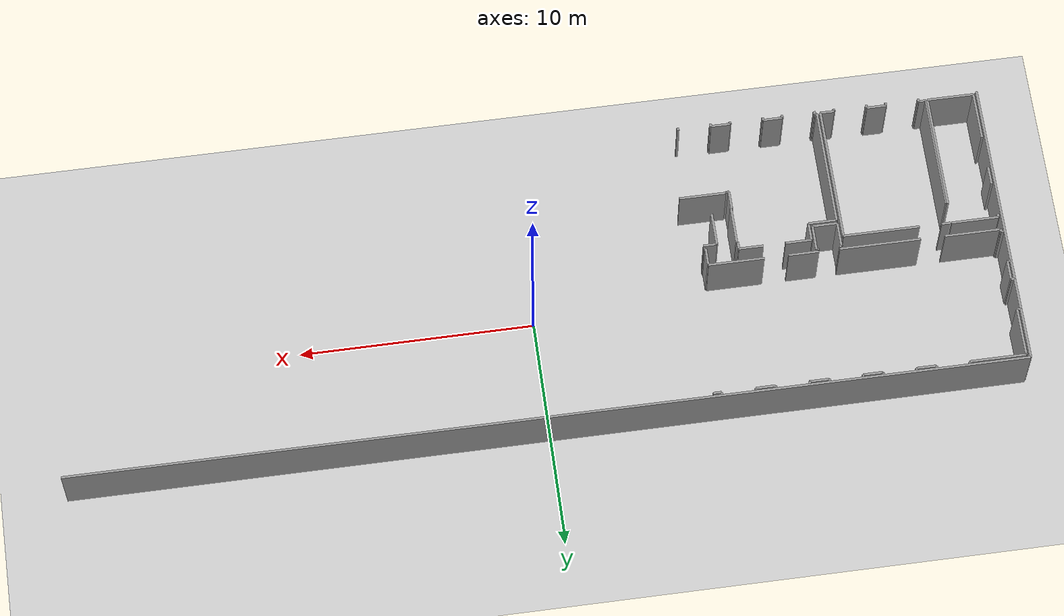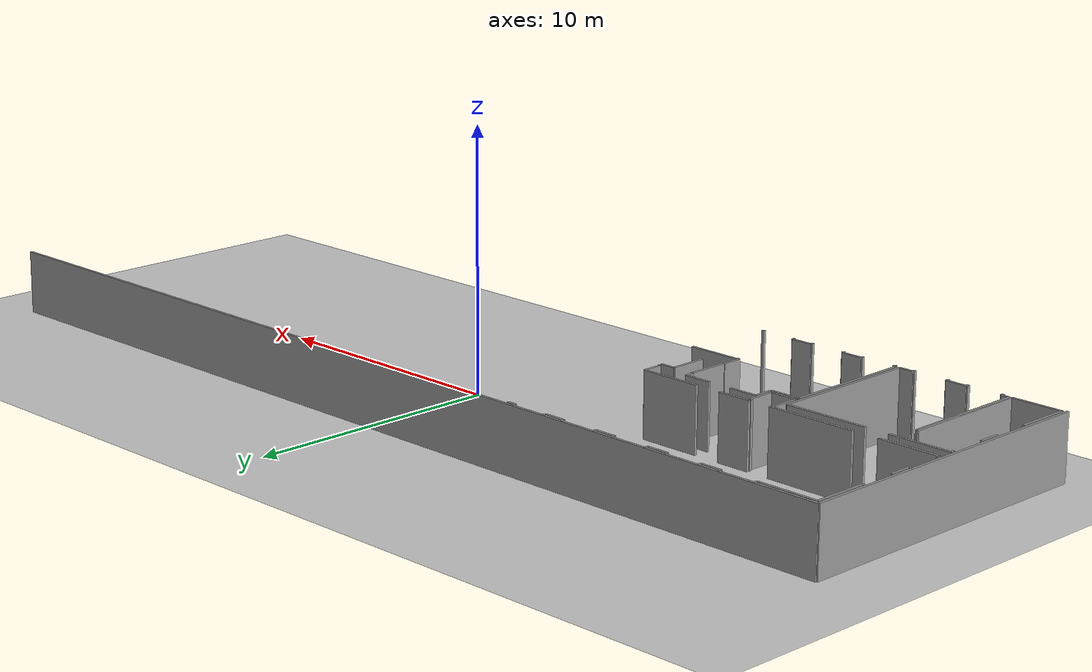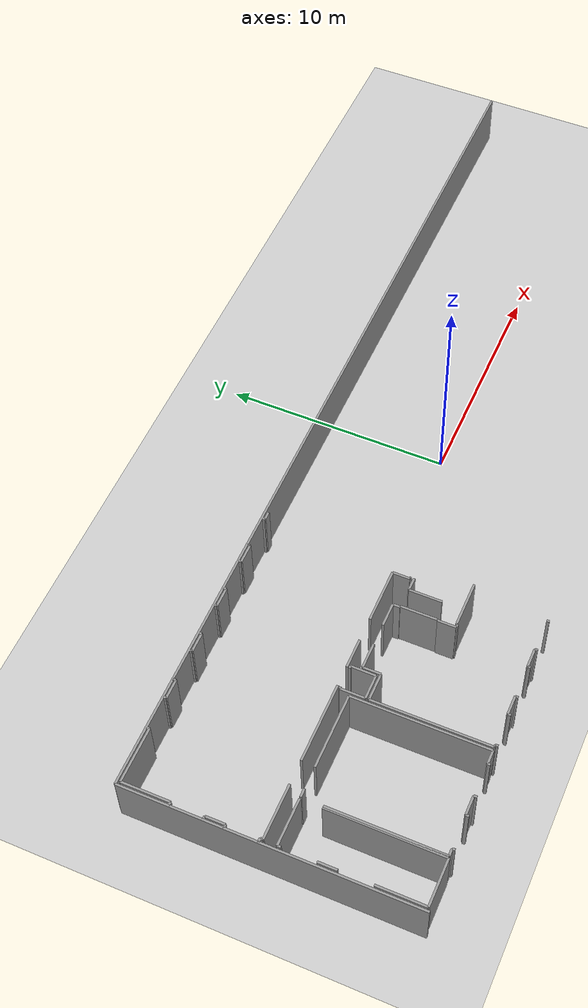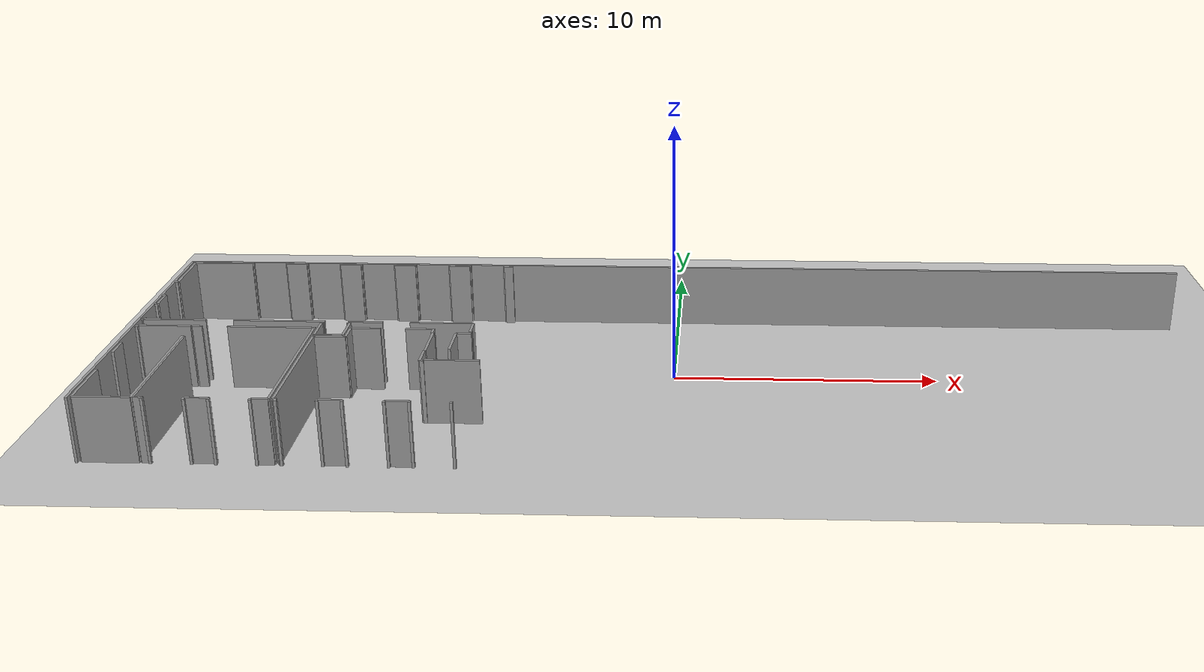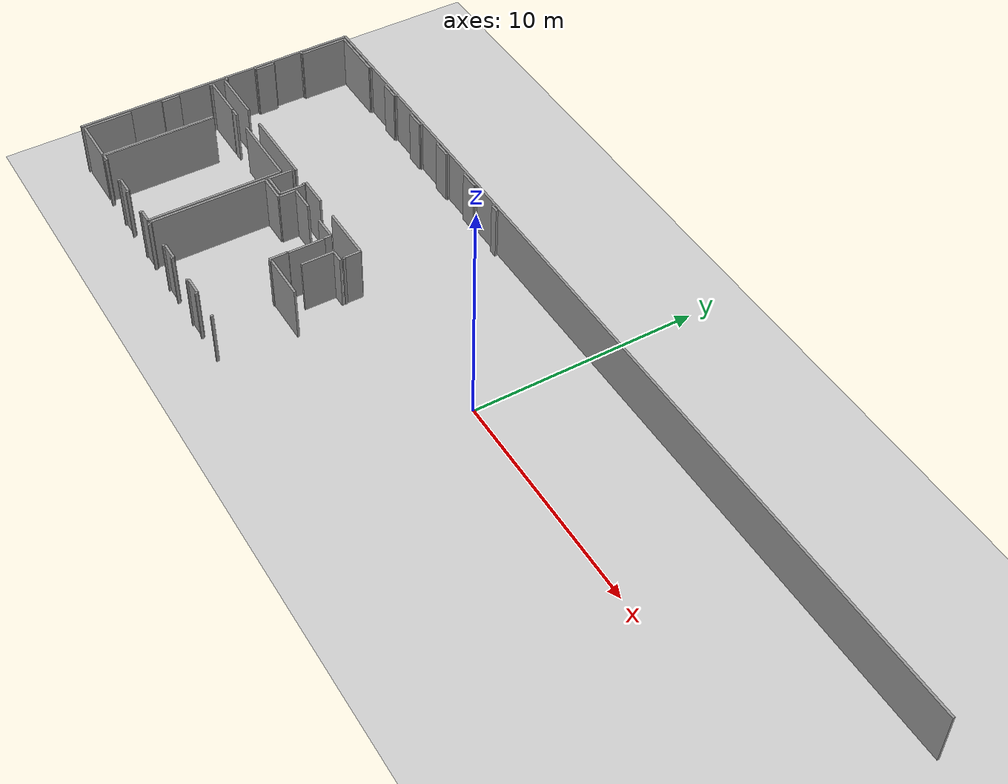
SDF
<sdf version="1.6">
 <world name="default">
  <model name="ground_plane">
   <static>1</static>
   <link name="link">
    <collision name="collision">
     <geometry><plane><normal>0 0 1</normal><size>100 100</size></plane></geometry>
     <surface><friction><ode><mu>100</mu><mu2>50</mu2></ode></friction></surface>
    </collision>
    <visual name="visual">
     <cast_shadows>0</cast_shadows>
     <geometry><plane><normal>0 0 1</normal><size>100 100</size></plane></geometry>
     <material>
      <script><uri>file://media/materials/scripts/gazebo.material</uri><name>Gazebo/Grey</name></script>
     </material>
    </visual>
   </link>
  </model>
  <model name="0510025537_Layout1_PLAN3">
   <static>1</static>
   <link name="Wall_4">
    <collision name="Wall_4_Collision">
     <geometry><box><size>0.0835610345047 0.1 2.5</size></box></geometry>
     <pose>0.0417805172523 0 1.25 0 0 0</pose>
    </collision>
    <visual name="Wall_4_Visual">
     <pose>0.0417805172523 0 1.25 0 0 0</pose>
     <geometry><box><size>0.0835610345047 0.1 2.5</size></box></geometry>
     <material>
      <script><uri>file://media/materials/scripts/gazebo.material</uri><name>Gazebo/Grey</name></script>
      <ambient>1 1 1 1</ambient>
     </material>
    </visual>
    <pose>12.7811336341 -6.77243439029 0 0 0 3.14159265359</pose>
   </link>
   <link name="Wall_5">
    <collision name="Wall_5_Collision">
     <geometry><box><size>0.762089343585 0.1 2.5</size></box></geometry>
     <pose>0.381044671793 0 1.25 0 0 0</pose>
    </collision>
    <visual name="Wall_5_Visual">
     <pose>0.381044671793 0 1.25 0 0 0</pose>
     <geometry><box><size>0.762089343585 0.1 2.5</size></box></geometry>
     <material>
      <script><uri>file://media/materials/scripts/gazebo.material</uri><name>Gazebo/Grey</name></script>
      <ambient>1 1 1 1</ambient>
     </material>
    </visual>
    <pose>12.6975725996 -6.77243439029 0 0 0 1.57079632679</pose>
   </link>
   <link name="Wall_6">
    <collision name="Wall_6_Collision">
     <geometry><box><size>2.39295926797 0.1 2.5</size></box></geometry>
     <pose>1.19647963398 0 1.25 0 0 0</pose>
    </collision>
    <visual name="Wall_6_Visual">
     <pose>1.19647963398 0 1.25 0 0 0</pose>
     <geometry><box><size>2.39295926797 0.1 2.5</size></box></geometry>
     <material>
      <script><uri>file://media/materials/scripts/gazebo.material</uri><name>Gazebo/Grey</name></script>
      <ambient>1 1 1 1</ambient>
     </material>
    </visual>
    <pose>12.6975725996 -6.01034504671 0 0 0 3.14159265359</pose>
   </link>
   <link name="Wall_7">
    <collision name="Wall_7_Collision">
     <geometry><box><size>1.30406049438 0.1 2.5</size></box></geometry>
     <pose>0.652030247188 0 1.25 0 0 0</pose>
    </collision>
    <visual name="Wall_7_Visual">
     <pose>0.652030247188 0 1.25 0 0 0</pose>
     <geometry><box><size>1.30406049438 0.1 2.5</size></box></geometry>
     <material>
      <script><uri>file://media/materials/scripts/gazebo.material</uri><name>Gazebo/Grey</name></script>
      <ambient>1 1 1 1</ambient>
     </material>
    </visual>
    <pose>9.2715066404 -6.01034504671 0 0 0 3.14159265359</pose>
   </link>
   <link name="Wall_8">
    <collision name="Wall_8_Collision">
     <geometry><box><size>3.47868081591 0.1 2.5</size></box></geometry>
     <pose>1.73934040796 0 1.25 0 0 0</pose>
    </collision>
    <visual name="Wall_8_Visual">
     <pose>1.73934040796 0 1.25 0 0 0</pose>
     <geometry><box><size>3.47868081591 0.1 2.5</size></box></geometry>
     <material>
      <script><uri>file://media/materials/scripts/gazebo.material</uri><name>Gazebo/Grey</name></script>
      <ambient>1 1 1 1</ambient>
     </material>
    </visual>
    <pose>7.07617080765 -6.01034504671 0 0 0 3.14159265359</pose>
   </link>
   <link name="Wall_9">
    <collision name="Wall_9_Collision">
     <geometry><box><size>2.39026498062 0.1 2.5</size></box></geometry>
     <pose>1.19513249031 0 1.25 0 0 0</pose>
    </collision>
    <visual name="Wall_9_Visual">
     <pose>1.19513249031 0 1.25 0 0 0</pose>
     <geometry><box><size>2.39026498062 0.1 2.5</size></box></geometry>
     <material>
      <script><uri>file://media/materials/scripts/gazebo.material</uri><name>Gazebo/Grey</name></script>
      <ambient>1 1 1 1</ambient>
     </material>
    </visual>
    <pose>2.55739340408 -6.01034504671 0 0 0 3.14159265359</pose>
   </link>
   <link name="Wall_10">
    <collision name="Wall_10_Collision">
     <geometry><box><size>0.112410243375 0.1 2.5</size></box></geometry>
     <pose>0.0562051216877 0 1.25 0 0 0</pose>
    </collision>
    <visual name="Wall_10_Visual">
     <pose>0.0562051216877 0 1.25 0 0 0</pose>
     <geometry><box><size>0.112410243375 0.1 2.5</size></box></geometry>
     <material>
      <script><uri>file://media/materials/scripts/gazebo.material</uri><name>Gazebo/Grey</name></script>
      <ambient>1 1 1 1</ambient>
     </material>
    </visual>
    <pose>0.167128423461 -6.01034504671 0 0 0 1.57079632679</pose>
   </link>
   <link name="Wall_11">
    <collision name="Wall_11_Collision">
     <geometry><box><size>0.167128423461 0.1 2.5</size></box></geometry>
     <pose>0.0835642117303 0 1.25 0 0 0</pose>
    </collision>
    <visual name="Wall_11_Visual">
     <pose>0.0835642117303 0 1.25 0 0 0</pose>
     <geometry><box><size>0.167128423461 0.1 2.5</size></box></geometry>
     <material>
      <script><uri>file://media/materials/scripts/gazebo.material</uri><name>Gazebo/Grey</name></script>
      <ambient>1 1 1 1</ambient>
     </material>
    </visual>
    <pose>0.167128423461 -5.89793480333 0 0 0 3.14159265359</pose>
   </link>
   <link name="Wall_12">
    <collision name="Wall_12_Collision">
     <geometry><box><size>0.150594141196 0.1 2.5</size></box></geometry>
     <pose>0.075297070598 0 1.25 0 0 0</pose>
    </collision>
    <visual name="Wall_12_Visual">
     <pose>0.075297070598 0 1.25 0 0 0</pose>
     <geometry><box><size>0.150594141196 0.1 2.5</size></box></geometry>
     <material>
      <script><uri>file://media/materials/scripts/gazebo.material</uri><name>Gazebo/Grey</name></script>
      <ambient>1 1 1 1</ambient>
     </material>
    </visual>
    <pose>0.0 -4.49785854991 0 0 0 0.0</pose>
   </link>
   <link name="Wall_13">
    <collision name="Wall_13_Collision">
     <geometry><box><size>0.852322551948 0.1 2.5</size></box></geometry>
     <pose>0.426161275974 0 1.25 0 0 0</pose>
    </collision>
    <visual name="Wall_13_Visual">
     <pose>0.426161275974 0 1.25 0 0 0</pose>
     <geometry><box><size>0.852322551948 0.1 2.5</size></box></geometry>
     <material>
      <script><uri>file://media/materials/scripts/gazebo.material</uri><name>Gazebo/Grey</name></script>
      <ambient>1 1 1 1</ambient>
     </material>
    </visual>
    <pose>0.150594141196 -4.49785854991 0 0 0 1.57079632679</pose>
   </link>
   <link name="Wall_14">
    <collision name="Wall_14_Collision">
     <geometry><box><size>0.148382792146 0.1 2.5</size></box></geometry>
     <pose>0.0741913960729 0 1.25 0 0 0</pose>
    </collision>
    <visual name="Wall_14_Visual">
     <pose>0.0741913960729 0 1.25 0 0 0</pose>
     <geometry><box><size>0.148382792146 0.1 2.5</size></box></geometry>
     <material>
      <script><uri>file://media/materials/scripts/gazebo.material</uri><name>Gazebo/Grey</name></script>
      <ambient>1 1 1 1</ambient>
     </material>
    </visual>
    <pose>0.150594141196 -3.64553599797 0 0 0 3.14159265359</pose>
   </link>
   <link name="Wall_15">
    <collision name="Wall_15_Collision">
     <geometry><box><size>0.154807142403 0.1 2.5</size></box></geometry>
     <pose>0.0774035712016 0 1.25 0 0 0</pose>
    </collision>
    <visual name="Wall_15_Visual">
     <pose>0.0774035712016 0 1.25 0 0 0</pose>
     <geometry><box><size>0.154807142403 0.1 2.5</size></box></geometry>
     <material>
      <script><uri>file://media/materials/scripts/gazebo.material</uri><name>Gazebo/Grey</name></script>
      <ambient>1 1 1 1</ambient>
     </material>
    </visual>
    <pose>0.00221134905001 -2.23677320963 0 0 0 0.0</pose>
   </link>
   <link name="Wall_16">
    <collision name="Wall_16_Collision">
     <geometry><box><size>2.09745186503 0.1 2.5</size></box></geometry>
     <pose>1.04872593252 0 1.25 0 0 0</pose>
    </collision>
    <visual name="Wall_16_Visual">
     <pose>1.04872593252 0 1.25 0 0 0</pose>
     <geometry><box><size>2.09745186503 0.1 2.5</size></box></geometry>
     <material>
      <script><uri>file://media/materials/scripts/gazebo.material</uri><name>Gazebo/Grey</name></script>
      <ambient>1 1 1 1</ambient>
     </material>
    </visual>
    <pose>0.157018491453 -2.23677320963 0 0 0 1.57079632679</pose>
   </link>
   <link name="Wall_17">
    <collision name="Wall_17_Collision">
     <geometry><box><size>2.38982652348 0.1 2.5</size></box></geometry>
     <pose>1.19491326174 0 1.25 0 0 0</pose>
    </collision>
    <visual name="Wall_17_Visual">
     <pose>1.19491326174 0 1.25 0 0 0</pose>
     <geometry><box><size>2.38982652348 0.1 2.5</size></box></geometry>
     <material>
      <script><uri>file://media/materials/scripts/gazebo.material</uri><name>Gazebo/Grey</name></script>
      <ambient>1 1 1 1</ambient>
     </material>
    </visual>
    <pose>0.157018491453 -0.139321344602 0 0 0 0.0</pose>
   </link>
   <link name="Wall_18">
    <collision name="Wall_18_Collision">
     <geometry><box><size>0.130793670967 0.1 2.5</size></box></geometry>
     <pose>0.0653968354833 0 1.25 0 0 0</pose>
    </collision>
    <visual name="Wall_18_Visual">
     <pose>0.0653968354833 0 1.25 0 0 0</pose>
     <geometry><box><size>0.130793670967 0.1 2.5</size></box></geometry>
     <material>
      <script><uri>file://media/materials/scripts/gazebo.material</uri><name>Gazebo/Grey</name></script>
      <ambient>1 1 1 1</ambient>
     </material>
    </visual>
    <pose>2.54684501493 -0.139321344602 0 0 0 1.57079632679</pose>
   </link>
   <link name="Wall_19">
    <collision name="Wall_19_Collision">
     <geometry><box><size>0.127158924827 0.1 2.5</size></box></geometry>
     <pose>0.0635794624134 0 1.25 0 0 0</pose>
    </collision>
    <visual name="Wall_19_Visual">
     <pose>0.0635794624134 0 1.25 0 0 0</pose>
     <geometry><box><size>0.127158924827 0.1 2.5</size></box></geometry>
     <material>
      <script><uri>file://media/materials/scripts/gazebo.material</uri><name>Gazebo/Grey</name></script>
      <ambient>1 1 1 1</ambient>
     </material>
    </visual>
    <pose>3.9746902205 -0.00852767363538 0 0 0 -1.57079632679</pose>
   </link>
   <link name="Wall_20">
    <collision name="Wall_20_Collision">
     <geometry><box><size>0.839295926797 0.1 2.5</size></box></geometry>
     <pose>0.419647963398 0 1.25 0 0 0</pose>
    </collision>
    <visual name="Wall_20_Visual">
     <pose>0.419647963398 0 1.25 0 0 0</pose>
     <geometry><box><size>0.839295926797 0.1 2.5</size></box></geometry>
     <material>
      <script><uri>file://media/materials/scripts/gazebo.material</uri><name>Gazebo/Grey</name></script>
      <ambient>1 1 1 1</ambient>
     </material>
    </visual>
    <pose>3.9746902205 -0.135686598462 0 0 0 0.0</pose>
   </link>
   <link name="Wall_21">
    <collision name="Wall_21_Collision">
     <geometry><box><size>0.134422062655 0.1 2.5</size></box></geometry>
     <pose>0.0672110313274 0 1.25 0 0 0</pose>
    </collision>
    <visual name="Wall_21_Visual">
     <pose>0.0672110313274 0 1.25 0 0 0</pose>
     <geometry><box><size>0.134422062655 0.1 2.5</size></box></geometry>
     <material>
      <script><uri>file://media/materials/scripts/gazebo.material</uri><name>Gazebo/Grey</name></script>
      <ambient>1 1 1 1</ambient>
     </material>
    </visual>
    <pose>4.8139861473 -0.135686598462 0 0 0 1.57079632679</pose>
   </link>
   <link name="Wall_22">
    <collision name="Wall_22_Collision">
     <geometry><box><size>0.138056808795 0.1 2.5</size></box></geometry>
     <pose>0.0690284043973 0 1.25 0 0 0</pose>
    </collision>
    <visual name="Wall_22_Visual">
     <pose>0.0690284043973 0 1.25 0 0 0</pose>
     <geometry><box><size>0.138056808795 0.1 2.5</size></box></geometry>
     <material>
      <script><uri>file://media/materials/scripts/gazebo.material</uri><name>Gazebo/Grey</name></script>
      <ambient>1 1 1 1</ambient>
     </material>
    </visual>
    <pose>6.2272796594 -0.00126453580733 0 0 0 -1.57079632679</pose>
   </link>
   <link name="Wall_23">
    <collision name="Wall_23_Collision">
     <geometry><box><size>0.842854419521 0.1 2.5</size></box></geometry>
     <pose>0.42142720976 0 1.25 0 0 0</pose>
    </collision>
    <visual name="Wall_23_Visual">
     <pose>0.42142720976 0 1.25 0 0 0</pose>
     <geometry><box><size>0.842854419521 0.1 2.5</size></box></geometry>
     <material>
      <script><uri>file://media/materials/scripts/gazebo.material</uri><name>Gazebo/Grey</name></script>
      <ambient>1 1 1 1</ambient>
     </material>
    </visual>
    <pose>6.2272796594 -0.139321344602 0 0 0 0.0</pose>
   </link>
   <link name="Wall_24">
    <collision name="Wall_24_Collision">
     <geometry><box><size>0.127158924827 0.1 2.5</size></box></geometry>
     <pose>0.0635794624134 0 1.25 0 0 0</pose>
    </collision>
    <visual name="Wall_24_Visual">
     <pose>0.0635794624134 0 1.25 0 0 0</pose>
     <geometry><box><size>0.127158924827 0.1 2.5</size></box></geometry>
     <material>
      <script><uri>file://media/materials/scripts/gazebo.material</uri><name>Gazebo/Grey</name></script>
      <ambient>1 1 1 1</ambient>
     </material>
    </visual>
    <pose>7.07013407892 -0.139321344602 0 0 0 1.57079632679</pose>
   </link>
   <link name="Wall_25">
    <collision name="Wall_25_Collision">
     <geometry><box><size>0.12299675923 0.1 2.5</size></box></geometry>
     <pose>0.0614983796149 0 1.25 0 0 0</pose>
    </collision>
    <visual name="Wall_25_Visual">
     <pose>0.0614983796149 0 1.25 0 0 0</pose>
     <geometry><box><size>0.12299675923 0.1 2.5</size></box></geometry>
     <material>
      <script><uri>file://media/materials/scripts/gazebo.material</uri><name>Gazebo/Grey</name></script>
      <ambient>1 1 1 1</ambient>
     </material>
    </visual>
    <pose>8.48393594713 -0.0121624197751 0 0 0 -1.57079632679</pose>
   </link>
   <link name="Wall_26">
    <collision name="Wall_26_Collision">
     <geometry><box><size>0.848891148249 0.1 2.5</size></box></geometry>
     <pose>0.424445574125 0 1.25 0 0 0</pose>
    </collision>
    <visual name="Wall_26_Visual">
     <pose>0.424445574125 0 1.25 0 0 0</pose>
     <geometry><box><size>0.848891148249 0.1 2.5</size></box></geometry>
     <material>
      <script><uri>file://media/materials/scripts/gazebo.material</uri><name>Gazebo/Grey</name></script>
      <ambient>1 1 1 1</ambient>
     </material>
    </visual>
    <pose>8.48393594713 -0.135159179005 0 0 0 0.0</pose>
   </link>
   <link name="Wall_27">
    <collision name="Wall_27_Collision">
     <geometry><box><size>0.123625849908 0.1 2.5</size></box></geometry>
     <pose>0.0618129249539 0 1.25 0 0 0</pose>
    </collision>
    <visual name="Wall_27_Visual">
     <pose>0.0618129249539 0 1.25 0 0 0</pose>
     <geometry><box><size>0.123625849908 0.1 2.5</size></box></geometry>
     <material>
      <script><uri>file://media/materials/scripts/gazebo.material</uri><name>Gazebo/Grey</name></script>
      <ambient>1 1 1 1</ambient>
     </material>
    </visual>
    <pose>9.33282709538 -0.135159179005 0 0 0 1.57079632679</pose>
   </link>
   <link name="Wall_28">
    <collision name="Wall_28_Collision">
     <geometry><box><size>0.123625849908 0.1 2.5</size></box></geometry>
     <pose>0.0618129249539 0 1.25 0 0 0</pose>
    </collision>
    <visual name="Wall_28_Visual">
     <pose>0.0618129249539 0 1.25 0 0 0</pose>
     <geometry><box><size>0.123625849908 0.1 2.5</size></box></geometry>
     <material>
      <script><uri>file://media/materials/scripts/gazebo.material</uri><name>Gazebo/Grey</name></script>
      <ambient>1 1 1 1</ambient>
     </material>
    </visual>
    <pose>10.7586388765 -0.011533329097 0 0 0 -1.57079632679</pose>
   </link>
   <link name="Wall_29">
    <collision name="Wall_29_Collision">
     <geometry><box><size>0.840630361568 0.1 2.5</size></box></geometry>
     <pose>0.420315180784 0 1.25 0 0 0</pose>
    </collision>
    <visual name="Wall_29_Visual">
     <pose>0.420315180784 0 1.25 0 0 0</pose>
     <geometry><box><size>0.840630361568 0.1 2.5</size></box></geometry>
     <material>
      <script><uri>file://media/materials/scripts/gazebo.material</uri><name>Gazebo/Grey</name></script>
      <ambient>1 1 1 1</ambient>
     </material>
    </visual>
    <pose>10.7586388765 -0.135159179005 0 0 0 0.0</pose>
   </link>
   <link name="Wall_30">
    <collision name="Wall_30_Collision">
     <geometry><box><size>0.123625849908 0.1 2.5</size></box></geometry>
     <pose>0.0618129249539 0 1.25 0 0 0</pose>
    </collision>
    <visual name="Wall_30_Visual">
     <pose>0.0618129249539 0 1.25 0 0 0</pose>
     <geometry><box><size>0.123625849908 0.1 2.5</size></box></geometry>
     <material>
      <script><uri>file://media/materials/scripts/gazebo.material</uri><name>Gazebo/Grey</name></script>
      <ambient>1 1 1 1</ambient>
     </material>
    </visual>
    <pose>11.5992692381 -0.135159179005 0 0 0 1.57079632679</pose>
   </link>
   <link name="Wall_31">
    <collision name="Wall_31_Collision">
     <geometry><box><size>0.134993963271 0.1 2.5</size></box></geometry>
     <pose>0.0674969816356 0 1.25 0 0 0</pose>
    </collision>
    <visual name="Wall_31_Visual">
     <pose>0.0674969816356 0 1.25 0 0 0</pose>
     <geometry><box><size>0.134993963271 0.1 2.5</size></box></geometry>
     <material>
      <script><uri>file://media/materials/scripts/gazebo.material</uri><name>Gazebo/Grey</name></script>
      <ambient>1 1 1 1</ambient>
     </material>
    </visual>
    <pose>13.0320709157 -0.011533329097 0 0 0 -1.57079632679</pose>
   </link>
   <link name="Wall_32">
    <collision name="Wall_32_Collision">
     <geometry><box><size>0.355531549851 0.1 2.5</size></box></geometry>
     <pose>0.177765774925 0 1.25 0 0 0</pose>
    </collision>
    <visual name="Wall_32_Visual">
     <pose>0.177765774925 0 1.25 0 0 0</pose>
     <geometry><box><size>0.355531549851 0.1 2.5</size></box></geometry>
     <material>
      <script><uri>file://media/materials/scripts/gazebo.material</uri><name>Gazebo/Grey</name></script>
      <ambient>1 1 1 1</ambient>
     </material>
    </visual>
    <pose>13.0320709157 -0.146527292368 0 0 0 0.0</pose>
   </link>
   <link name="Wall_42">
    <collision name="Wall_42_Collision">
     <geometry><box><size>1.06545084832 0.1 2.5</size></box></geometry>
     <pose>0.53272542416 0 1.25 0 0 0</pose>
    </collision>
    <visual name="Wall_42_Visual">
     <pose>0.53272542416 0 1.25 0 0 0</pose>
     <geometry><box><size>1.06545084832 0.1 2.5</size></box></geometry>
     <material>
      <script><uri>file://media/materials/scripts/gazebo.material</uri><name>Gazebo/Grey</name></script>
      <ambient>1 1 1 1</ambient>
     </material>
    </visual>
    <pose>8.04732159878 -7.21368748809 0 0 0 3.14159265359</pose>
   </link>
   <link name="Wall_43">
    <collision name="Wall_43_Collision">
     <geometry><box><size>1.08413293512 0.1 2.5</size></box></geometry>
     <pose>0.542066467561 0 1.25 0 0 0</pose>
    </collision>
    <visual name="Wall_43_Visual">
     <pose>0.542066467561 0 1.25 0 0 0</pose>
     <geometry><box><size>1.08413293512 0.1 2.5</size></box></geometry>
     <material>
      <script><uri>file://media/materials/scripts/gazebo.material</uri><name>Gazebo/Grey</name></script>
      <ambient>1 1 1 1</ambient>
     </material>
    </visual>
    <pose>6.98187075046 -7.21368748809 0 0 0 1.57079632679</pose>
   </link>
   <link name="Wall_44">
    <collision name="Wall_44_Collision">
     <geometry><box><size>0.0789858295736 0.1 2.5</size></box></geometry>
     <pose>0.0394929147868 0 1.25 0 0 0</pose>
    </collision>
    <visual name="Wall_44_Visual">
     <pose>0.0394929147868 0 1.25 0 0 0</pose>
     <geometry><box><size>0.0789858295736 0.1 2.5</size></box></geometry>
     <material>
      <script><uri>file://media/materials/scripts/gazebo.material</uri><name>Gazebo/Grey</name></script>
      <ambient>1 1 1 1</ambient>
     </material>
    </visual>
    <pose>6.98187075046 -6.12955455296 0 0 0 0.0</pose>
   </link>
   <link name="Wall_45">
    <collision name="Wall_45_Collision">
     <geometry><box><size>0.1085975726 0.1 2.5</size></box></geometry>
     <pose>0.0542987862998 0 1.25 0 0 0</pose>
    </collision>
    <visual name="Wall_45_Visual">
     <pose>0.0542987862998 0 1.25 0 0 0</pose>
     <geometry><box><size>0.1085975726 0.1 2.5</size></box></geometry>
     <material>
      <script><uri>file://media/materials/scripts/gazebo.material</uri><name>Gazebo/Grey</name></script>
      <ambient>1 1 1 1</ambient>
     </material>
    </visual>
    <pose>7.94704835737 -6.12955455296 0 0 0 0.0</pose>
   </link>
   <link name="Wall_46">
    <collision name="Wall_46_Collision">
     <geometry><box><size>1.08416489313 0.1 2.5</size></box></geometry>
     <pose>0.542082446567 0 1.25 0 0 0</pose>
    </collision>
    <visual name="Wall_46_Visual">
     <pose>0.542082446567 0 1.25 0 0 0</pose>
     <geometry><box><size>1.08416489313 0.1 2.5</size></box></geometry>
     <material>
      <script><uri>file://media/materials/scripts/gazebo.material</uri><name>Gazebo/Grey</name></script>
      <ambient>1 1 1 1</ambient>
     </material>
    </visual>
    <pose>8.05564592997 -6.12955455296 0 0 0 -1.5784745066</pose>
   </link>
   <link name="Wall_47">
    <collision name="Wall_47_Collision">
     <geometry><box><size>2.01134905001 0.1 2.5</size></box></geometry>
     <pose>1.005674525 0 1.25 0 0 0</pose>
    </collision>
    <visual name="Wall_47_Visual">
     <pose>1.005674525 0 1.25 0 0 0</pose>
     <geometry><box><size>2.01134905001 0.1 2.5</size></box></geometry>
     <material>
      <script><uri>file://media/materials/scripts/gazebo.material</uri><name>Gazebo/Grey</name></script>
      <ambient>1 1 1 1</ambient>
     </material>
    </visual>
    <pose>2.16392578001 -12.5265171252 0 0 0 3.14159265359</pose>
   </link>
   <link name="Wall_48">
    <collision name="Wall_48_Collision">
     <geometry><box><size>2.10529325793 0.1 2.5</size></box></geometry>
     <pose>1.05264662896 0 1.25 0 0 0</pose>
    </collision>
    <visual name="Wall_48_Visual">
     <pose>1.05264662896 0 1.25 0 0 0</pose>
     <geometry><box><size>2.10529325793 0.1 2.5</size></box></geometry>
     <material>
      <script><uri>file://media/materials/scripts/gazebo.material</uri><name>Gazebo/Grey</name></script>
      <ambient>1 1 1 1</ambient>
     </material>
    </visual>
    <pose>0.152576729999 -12.5265171252 0 0 0 1.57079632679</pose>
   </link>
   <link name="Wall_49">
    <collision name="Wall_49_Collision">
     <geometry><box><size>0.820232572917 0.1 2.5</size></box></geometry>
     <pose>0.410116286459 0 1.25 0 0 0</pose>
    </collision>
    <visual name="Wall_49_Visual">
     <pose>0.410116286459 0 1.25 0 0 0</pose>
     <geometry><box><size>0.820232572917 0.1 2.5</size></box></geometry>
     <material>
      <script><uri>file://media/materials/scripts/gazebo.material</uri><name>Gazebo/Grey</name></script>
      <ambient>1 1 1 1</ambient>
     </material>
    </visual>
    <pose>0.152576729999 -8.99337866175 0 0 0 1.57079632679</pose>
   </link>
   <link name="Wall_50">
    <collision name="Wall_50_Collision">
     <geometry><box><size>0.150536951134 0.1 2.5</size></box></geometry>
     <pose>0.0752684755671 0 1.25 0 0 0</pose>
    </collision>
    <visual name="Wall_50_Visual">
     <pose>0.0752684755671 0 1.25 0 0 0</pose>
     <geometry><box><size>0.150536951134 0.1 2.5</size></box></geometry>
     <material>
      <script><uri>file://media/materials/scripts/gazebo.material</uri><name>Gazebo/Grey</name></script>
      <ambient>1 1 1 1</ambient>
     </material>
    </visual>
    <pose>0.152576729999 -6.73742136367 0 0 0 1.57079632679</pose>
   </link>
   <link name="Wall_51">
    <collision name="Wall_51_Collision">
     <geometry><box><size>2.0157336214 0.1 2.5</size></box></geometry>
     <pose>1.0078668107 0 1.25 0 0 0</pose>
    </collision>
    <visual name="Wall_51_Visual">
     <pose>1.0078668107 0 1.25 0 0 0</pose>
     <geometry><box><size>2.0157336214 0.1 2.5</size></box></geometry>
     <material>
      <script><uri>file://media/materials/scripts/gazebo.material</uri><name>Gazebo/Grey</name></script>
      <ambient>1 1 1 1</ambient>
     </material>
    </visual>
    <pose>0.152576729999 -6.58688441253 0 0 0 0.0</pose>
   </link>
   <link name="Wall_52">
    <collision name="Wall_52_Collision">
     <geometry><box><size>5.01989134738 0.1 2.5</size></box></geometry>
     <pose>2.50994567369 0 1.25 0 0 0</pose>
    </collision>
    <visual name="Wall_52_Visual">
     <pose>2.50994567369 0 1.25 0 0 0</pose>
     <geometry><box><size>5.01989134738 0.1 2.5</size></box></geometry>
     <material>
      <script><uri>file://media/materials/scripts/gazebo.material</uri><name>Gazebo/Grey</name></script>
      <ambient>1 1 1 1</ambient>
     </material>
    </visual>
    <pose>2.1683103514 -7.5066276927 0 0 0 -1.57166976641</pose>
   </link>
   <link name="Wall_53">
    <collision name="Wall_53_Collision">
     <geometry><box><size>0.600622736227 0.1 2.5</size></box></geometry>
     <pose>0.300311368113 0 1.25 0 0 0</pose>
    </collision>
    <visual name="Wall_53_Visual">
     <pose>0.300311368113 0 1.25 0 0 0</pose>
     <geometry><box><size>0.600622736227 0.1 2.5</size></box></geometry>
     <material>
      <script><uri>file://media/materials/scripts/gazebo.material</uri><name>Gazebo/Grey</name></script>
      <ambient>1 1 1 1</ambient>
     </material>
    </visual>
    <pose>6.83374849082 -12.5190824172 0 0 0 3.14159265359</pose>
   </link>
   <link name="Wall_54">
    <collision name="Wall_54_Collision">
     <geometry><box><size>0.111711253733 0.1 2.5</size></box></geometry>
     <pose>0.0558556268666 0 1.25 0 0 0</pose>
    </collision>
    <visual name="Wall_54_Visual">
     <pose>0.0558556268666 0 1.25 0 0 0</pose>
     <geometry><box><size>0.111711253733 0.1 2.5</size></box></geometry>
     <material>
      <script><uri>file://media/materials/scripts/gazebo.material</uri><name>Gazebo/Grey</name></script>
      <ambient>1 1 1 1</ambient>
     </material>
    </visual>
    <pose>6.23312575459 -12.5190824172 0 0 0 -1.57079632679</pose>
   </link>
   <link name="Wall_55">
    <collision name="Wall_55_Collision">
     <geometry><box><size>0.135794624134 0.1 2.5</size></box></geometry>
     <pose>0.0678973120671 0 1.25 0 0 0</pose>
    </collision>
    <visual name="Wall_55_Visual">
     <pose>0.0678973120671 0 1.25 0 0 0</pose>
     <geometry><box><size>0.135794624134 0.1 2.5</size></box></geometry>
     <material>
      <script><uri>file://media/materials/scripts/gazebo.material</uri><name>Gazebo/Grey</name></script>
      <ambient>1 1 1 1</ambient>
     </material>
    </visual>
    <pose>4.81379551376 -12.630793671 0 0 0 1.57079632679</pose>
   </link>
   <link name="Wall_56">
    <collision name="Wall_56_Collision">
     <geometry><box><size>0.83719895787 0.1 2.5</size></box></geometry>
     <pose>0.418599478935 0 1.25 0 0 0</pose>
    </collision>
    <visual name="Wall_56_Visual">
     <pose>0.418599478935 0 1.25 0 0 0</pose>
     <geometry><box><size>0.83719895787 0.1 2.5</size></box></geometry>
     <material>
      <script><uri>file://media/materials/scripts/gazebo.material</uri><name>Gazebo/Grey</name></script>
      <ambient>1 1 1 1</ambient>
     </material>
    </visual>
    <pose>4.81379551376 -12.4949990468 0 0 0 3.14159265359</pose>
   </link>
   <link name="Wall_57">
    <collision name="Wall_57_Collision">
     <geometry><box><size>0.132680943001 0.1 2.5</size></box></geometry>
     <pose>0.0663404715003 0 1.25 0 0 0</pose>
    </collision>
    <visual name="Wall_57_Visual">
     <pose>0.0663404715003 0 1.25 0 0 0</pose>
     <geometry><box><size>0.132680943001 0.1 2.5</size></box></geometry>
     <material>
      <script><uri>file://media/materials/scripts/gazebo.material</uri><name>Gazebo/Grey</name></script>
      <ambient>1 1 1 1</ambient>
     </material>
    </visual>
    <pose>3.97659655589 -12.4949990468 0 0 0 -1.57079632679</pose>
   </link>
   <link name="Wall_58">
    <collision name="Wall_58_Collision">
     <geometry><box><size>0.12009912944 0.1 2.5</size></box></geometry>
     <pose>0.0600495647201 0 1.25 0 0 0</pose>
    </collision>
    <visual name="Wall_58_Visual">
     <pose>0.0600495647201 0 1.25 0 0 0</pose>
     <geometry><box><size>0.12009912944 0.1 2.5</size></box></geometry>
     <material>
      <script><uri>file://media/materials/scripts/gazebo.material</uri><name>Gazebo/Grey</name></script>
      <ambient>1 1 1 1</ambient>
     </material>
    </visual>
    <pose>2.5486242613 -12.6276799898 0 0 0 1.57079632679</pose>
   </link>
   <link name="Wall_59">
    <collision name="Wall_59_Collision">
     <geometry><box><size>0.315943318294 0.1 2.5</size></box></geometry>
     <pose>0.157971659147 0 1.25 0 0 0</pose>
    </collision>
    <visual name="Wall_59_Visual">
     <pose>0.157971659147 0 1.25 0 0 0</pose>
     <geometry><box><size>0.315943318294 0.1 2.5</size></box></geometry>
     <material>
      <script><uri>file://media/materials/scripts/gazebo.material</uri><name>Gazebo/Grey</name></script>
      <ambient>1 1 1 1</ambient>
     </material>
    </visual>
    <pose>2.5486242613 -12.5075808604 0 0 0 3.14159265359</pose>
   </link>
   <link name="Wall_60">
    <collision name="Wall_60_Collision">
     <geometry><box><size>4.99345491517 0.1 2.5</size></box></geometry>
     <pose>2.49672745758 0 1.25 0 0 0</pose>
    </collision>
    <visual name="Wall_60_Visual">
     <pose>2.49672745758 0 1.25 0 0 0</pose>
     <geometry><box><size>4.99345491517 0.1 2.5</size></box></geometry>
     <material>
      <script><uri>file://media/materials/scripts/gazebo.material</uri><name>Gazebo/Grey</name></script>
      <ambient>1 1 1 1</ambient>
     </material>
    </visual>
    <pose>2.232680943 -12.5075808604 0 0 0 1.57079632679</pose>
   </link>
   <link name="Wall_61">
    <collision name="Wall_61_Collision">
     <geometry><box><size>0.366461206075 0.1 2.5</size></box></geometry>
     <pose>0.183230603037 0 1.25 0 0 0</pose>
    </collision>
    <visual name="Wall_61_Visual">
     <pose>0.183230603037 0 1.25 0 0 0</pose>
     <geometry><box><size>0.366461206075 0.1 2.5</size></box></geometry>
     <material>
      <script><uri>file://media/materials/scripts/gazebo.material</uri><name>Gazebo/Grey</name></script>
      <ambient>1 1 1 1</ambient>
     </material>
    </visual>
    <pose>2.232680943 -6.59025227172 0 0 0 0.0</pose>
   </link>
   <link name="Wall_62">
    <collision name="Wall_62_Collision">
     <geometry><box><size>3.27114443668 0.1 2.5</size></box></geometry>
     <pose>1.63557221834 0 1.25 0 0 0</pose>
    </collision>
    <visual name="Wall_62_Visual">
     <pose>1.63557221834 0 1.25 0 0 0</pose>
     <geometry><box><size>3.27114443668 0.1 2.5</size></box></geometry>
     <material>
      <script><uri>file://media/materials/scripts/gazebo.material</uri><name>Gazebo/Grey</name></script>
      <ambient>1 1 1 1</ambient>
     </material>
    </visual>
    <pose>3.55084831925 -6.59025227172 0 0 0 0.0</pose>
   </link>
   <link name="Wall_63">
    <collision name="Wall_63_Collision">
     <geometry><box><size>5.92884180019 0.1 2.5</size></box></geometry>
     <pose>2.9644209001 0 1.25 0 0 0</pose>
    </collision>
    <visual name="Wall_63_Visual">
     <pose>2.9644209001 0 1.25 0 0 0</pose>
     <geometry><box><size>5.92884180019 0.1 2.5</size></box></geometry>
     <material>
      <script><uri>file://media/materials/scripts/gazebo.material</uri><name>Gazebo/Grey</name></script>
      <ambient>1 1 1 1</ambient>
     </material>
    </visual>
    <pose>6.82199275593 -6.59025227172 0 0 0 -1.56881352088</pose>
   </link>
   <link name="Wall_65">
    <collision name="Wall_65_Collision">
     <geometry><box><size>0.119844951388 0.1 2.5</size></box></geometry>
     <pose>0.0599224756942 0 1.25 0 0 0</pose>
    </collision>
    <visual name="Wall_65_Visual">
     <pose>0.0599224756942 0 1.25 0 0 0</pose>
     <geometry><box><size>0.119844951388 0.1 2.5</size></box></geometry>
     <material>
      <script><uri>file://media/materials/scripts/gazebo.material</uri><name>Gazebo/Grey</name></script>
      <ambient>1 1 1 1</ambient>
     </material>
    </visual>
    <pose>13.014024274 -12.5103132744 0 0 0 -1.57079632679</pose>
   </link>
   <link name="Wall_66">
    <collision name="Wall_66_Collision">
     <geometry><box><size>0.119400139798 0.1 2.5</size></box></geometry>
     <pose>0.059700069899 0 1.25 0 0 0</pose>
    </collision>
    <visual name="Wall_66_Visual">
     <pose>0.059700069899 0 1.25 0 0 0</pose>
     <geometry><box><size>0.119400139798 0.1 2.5</size></box></geometry>
     <material>
      <script><uri>file://media/materials/scripts/gazebo.material</uri><name>Gazebo/Grey</name></script>
      <ambient>1 1 1 1</ambient>
     </material>
    </visual>
    <pose>11.5967910021 -12.6301582258 0 0 0 1.57079632679</pose>
   </link>
   <link name="Wall_67">
    <collision name="Wall_67_Collision">
     <geometry><box><size>0.840376183517 0.1 2.5</size></box></geometry>
     <pose>0.420188091758 0 1.25 0 0 0</pose>
    </collision>
    <visual name="Wall_67_Visual">
     <pose>0.420188091758 0 1.25 0 0 0</pose>
     <geometry><box><size>0.840376183517 0.1 2.5</size></box></geometry>
     <material>
      <script><uri>file://media/materials/scripts/gazebo.material</uri><name>Gazebo/Grey</name></script>
      <ambient>1 1 1 1</ambient>
     </material>
    </visual>
    <pose>11.5967910021 -12.510758086 0 0 0 3.14159265359</pose>
   </link>
   <link name="Wall_68">
    <collision name="Wall_68_Collision">
     <geometry><box><size>0.120035584927 0.1 2.5</size></box></geometry>
     <pose>0.0600177924636 0 1.25 0 0 0</pose>
    </collision>
    <visual name="Wall_68_Visual">
     <pose>0.0600177924636 0 1.25 0 0 0</pose>
     <geometry><box><size>0.120035584927 0.1 2.5</size></box></geometry>
     <material>
      <script><uri>file://media/materials/scripts/gazebo.material</uri><name>Gazebo/Grey</name></script>
      <ambient>1 1 1 1</ambient>
     </material>
    </visual>
    <pose>10.7564148186 -12.510758086 0 0 0 -1.57079632679</pose>
   </link>
   <link name="Wall_69">
    <collision name="Wall_69_Collision">
     <geometry><box><size>0.126326491707 0.1 2.5</size></box></geometry>
     <pose>0.0631632458537 0 1.25 0 0 0</pose>
    </collision>
    <visual name="Wall_69_Visual">
     <pose>0.0631632458537 0 1.25 0 0 0</pose>
     <geometry><box><size>0.126326491707 0.1 2.5</size></box></geometry>
     <material>
      <script><uri>file://media/materials/scripts/gazebo.material</uri><name>Gazebo/Grey</name></script>
      <ambient>1 1 1 1</ambient>
     </material>
    </visual>
    <pose>9.32844252399 -12.630793671 0 0 0 1.57079632679</pose>
   </link>
   <link name="Wall_70">
    <collision name="Wall_70_Collision">
     <geometry><box><size>0.834085276736 0.1 2.5</size></box></geometry>
     <pose>0.417042638368 0 1.25 0 0 0</pose>
    </collision>
    <visual name="Wall_70_Visual">
     <pose>0.417042638368 0 1.25 0 0 0</pose>
     <geometry><box><size>0.834085276736 0.1 2.5</size></box></geometry>
     <material>
      <script><uri>file://media/materials/scripts/gazebo.material</uri><name>Gazebo/Grey</name></script>
      <ambient>1 1 1 1</ambient>
     </material>
    </visual>
    <pose>9.32844252399 -12.5044671793 0 0 0 3.14159265359</pose>
   </link>
   <link name="Wall_71">
    <collision name="Wall_71_Collision">
     <geometry><box><size>0.129503717354 0.1 2.5</size></box></geometry>
     <pose>0.064751858677 0 1.25 0 0 0</pose>
    </collision>
    <visual name="Wall_71_Visual">
     <pose>0.064751858677 0 1.25 0 0 0</pose>
     <geometry><box><size>0.129503717354 0.1 2.5</size></box></geometry>
     <material>
      <script><uri>file://media/materials/scripts/gazebo.material</uri><name>Gazebo/Grey</name></script>
      <ambient>1 1 1 1</ambient>
     </material>
    </visual>
    <pose>8.49435724725 -12.5044671793 0 0 0 -1.57079632679</pose>
   </link>
   <link name="Wall_72">
    <collision name="Wall_72_Collision">
     <geometry><box><size>0.128169282582 0.1 2.5</size></box></geometry>
     <pose>0.0640846412912 0 1.25 0 0 0</pose>
    </collision>
    <visual name="Wall_72_Visual">
     <pose>0.0640846412912 0 1.25 0 0 0</pose>
     <geometry><box><size>0.128169282582 0.1 2.5</size></box></geometry>
     <material>
      <script><uri>file://media/materials/scripts/gazebo.material</uri><name>Gazebo/Grey</name></script>
      <ambient>1 1 1 1</ambient>
     </material>
    </visual>
    <pose>7.08284298151 -12.6339708966 0 0 0 1.57079632679</pose>
   </link>
   <link name="Wall_73">
    <collision name="Wall_73_Collision">
     <geometry><box><size>0.0988752621211 0.1 2.5</size></box></geometry>
     <pose>0.0494376310606 0 1.25 0 0 0</pose>
    </collision>
    <visual name="Wall_73_Visual">
     <pose>0.0494376310606 0 1.25 0 0 0</pose>
     <geometry><box><size>0.0988752621211 0.1 2.5</size></box></geometry>
     <material>
      <script><uri>file://media/materials/scripts/gazebo.material</uri><name>Gazebo/Grey</name></script>
      <ambient>1 1 1 1</ambient>
     </material>
    </visual>
    <pose>7.08284298151 -12.505801614 0 0 0 3.14159265359</pose>
   </link>
   <link name="Wall_74">
    <collision name="Wall_74_Collision">
     <geometry><box><size>5.13833640465 0.1 2.5</size></box></geometry>
     <pose>2.56916820233 0 1.25 0 0 0</pose>
    </collision>
    <visual name="Wall_74_Visual">
     <pose>2.56916820233 0 1.25 0 0 0</pose>
     <geometry><box><size>5.13833640465 0.1 2.5</size></box></geometry>
     <material>
      <script><uri>file://media/materials/scripts/gazebo.material</uri><name>Gazebo/Grey</name></script>
      <ambient>1 1 1 1</ambient>
     </material>
    </visual>
    <pose>6.98396771939 -12.505801614 0 0 0 1.57079632679</pose>
   </link>
   <link name="Wall_75">
    <collision name="Wall_75_Collision">
     <geometry><box><size>1.20709156764 0.1 2.5</size></box></geometry>
     <pose>0.603545783822 0 1.25 0 0 0</pose>
    </collision>
    <visual name="Wall_75_Visual">
     <pose>0.603545783822 0 1.25 0 0 0</pose>
     <geometry><box><size>1.20709156764 0.1 2.5</size></box></geometry>
     <material>
      <script><uri>file://media/materials/scripts/gazebo.material</uri><name>Gazebo/Grey</name></script>
      <ambient>1 1 1 1</ambient>
     </material>
    </visual>
    <pose>6.98396771939 -7.36746520938 0 0 0 0.0</pose>
   </link>
   <link name="Wall_76">
    <collision name="Wall_76_Collision">
     <geometry><box><size>0.780326618796 0.1 2.5</size></box></geometry>
     <pose>0.390163309398 0 1.25 0 0 0</pose>
    </collision>
    <visual name="Wall_76_Visual">
     <pose>0.390163309398 0 1.25 0 0 0</pose>
     <geometry><box><size>0.780326618796 0.1 2.5</size></box></geometry>
     <material>
      <script><uri>file://media/materials/scripts/gazebo.material</uri><name>Gazebo/Grey</name></script>
      <ambient>1 1 1 1</ambient>
     </material>
    </visual>
    <pose>8.19105928703 -7.36746520938 0 0 0 1.57079632679</pose>
   </link>
   <link name="Wall_77">
    <collision name="Wall_77_Collision">
     <geometry><box><size>1.12156065324 0.1 2.5</size></box></geometry>
     <pose>0.560780326619 0 1.25 0 0 0</pose>
    </collision>
    <visual name="Wall_77_Visual">
     <pose>0.560780326619 0 1.25 0 0 0</pose>
     <geometry><box><size>1.12156065324 0.1 2.5</size></box></geometry>
     <material>
      <script><uri>file://media/materials/scripts/gazebo.material</uri><name>Gazebo/Grey</name></script>
      <ambient>1 1 1 1</ambient>
     </material>
    </visual>
    <pose>8.19105928703 -6.58713859058 0 0 0 0.0</pose>
   </link>
   <link name="Wall_78">
    <collision name="Wall_78_Collision">
     <geometry><box><size>1.05363156891 0.1 2.5</size></box></geometry>
     <pose>0.526815784457 0 1.25 0 0 0</pose>
    </collision>
    <visual name="Wall_78_Visual">
     <pose>0.526815784457 0 1.25 0 0 0</pose>
     <geometry><box><size>1.05363156891 0.1 2.5</size></box></geometry>
     <material>
      <script><uri>file://media/materials/scripts/gazebo.material</uri><name>Gazebo/Grey</name></script>
      <ambient>1 1 1 1</ambient>
     </material>
    </visual>
    <pose>10.2528245536 -6.58713859058 0 0 0 0.0</pose>
   </link>
   <link name="Wall_79">
    <collision name="Wall_79_Collision">
     <geometry><box><size>0.321535235432 0.1 2.5</size></box></geometry>
     <pose>0.160767617716 0 1.25 0 0 0</pose>
    </collision>
    <visual name="Wall_79_Visual">
     <pose>0.160767617716 0 1.25 0 0 0</pose>
     <geometry><box><size>0.321535235432 0.1 2.5</size></box></geometry>
     <material>
      <script><uri>file://media/materials/scripts/gazebo.material</uri><name>Gazebo/Grey</name></script>
      <ambient>1 1 1 1</ambient>
     </material>
    </visual>
    <pose>11.3064561225 -6.58713859058 0 0 0 -1.57079632679</pose>
   </link>
   <link name="Wall_80">
    <collision name="Wall_80_Collision">
     <geometry><box><size>0.0374277181165 0.1 2.5</size></box></geometry>
     <pose>0.0187138590583 0 1.25 0 0 0</pose>
    </collision>
    <visual name="Wall_80_Visual">
     <pose>0.0187138590583 0 1.25 0 0 0</pose>
     <geometry><box><size>0.0374277181165 0.1 2.5</size></box></geometry>
     <material>
      <script><uri>file://media/materials/scripts/gazebo.material</uri><name>Gazebo/Grey</name></script>
      <ambient>1 1 1 1</ambient>
     </material>
    </visual>
    <pose>11.3064561225 -6.90867382602 0 0 0 0.0</pose>
   </link>
   <link name="Wall_81">
    <collision name="Wall_81_Collision">
     <geometry><box><size>1.59858931181 0.1 2.5</size></box></geometry>
     <pose>0.799294655906 0 1.25 0 0 0</pose>
    </collision>
    <visual name="Wall_81_Visual">
     <pose>0.799294655906 0 1.25 0 0 0</pose>
     <geometry><box><size>1.59858931181 0.1 2.5</size></box></geometry>
     <material>
      <script><uri>file://media/materials/scripts/gazebo.material</uri><name>Gazebo/Grey</name></script>
      <ambient>1 1 1 1</ambient>
     </material>
    </visual>
    <pose>11.3438838406 -6.90867382602 0 0 0 -1.57079632679</pose>
   </link>
   <link name="Wall_82">
    <collision name="Wall_82_Collision">
     <geometry><box><size>0.0313274448751 0.1 2.5</size></box></geometry>
     <pose>0.0156637224376 0 1.25 0 0 0</pose>
    </collision>
    <visual name="Wall_82_Visual">
     <pose>0.0156637224376 0 1.25 0 0 0</pose>
     <geometry><box><size>0.0313274448751 0.1 2.5</size></box></geometry>
     <material>
      <script><uri>file://media/materials/scripts/gazebo.material</uri><name>Gazebo/Grey</name></script>
      <ambient>1 1 1 1</ambient>
     </material>
    </visual>
    <pose>11.3438838406 -8.50726313783 0 0 0 3.14159265359</pose>
   </link>
   <link name="Wall_83">
    <collision name="Wall_83_Collision">
     <geometry><box><size>0.798055537904 0.1 2.5</size></box></geometry>
     <pose>0.399027768952 0 1.25 0 0 0</pose>
    </collision>
    <visual name="Wall_83_Visual">
     <pose>0.399027768952 0 1.25 0 0 0</pose>
     <geometry><box><size>0.798055537904 0.1 2.5</size></box></geometry>
     <material>
      <script><uri>file://media/materials/scripts/gazebo.material</uri><name>Gazebo/Grey</name></script>
      <ambient>1 1 1 1</ambient>
     </material>
    </visual>
    <pose>11.3125563958 -8.50726313783 0 0 0 -1.57079632679</pose>
   </link>
   <link name="Wall_84">
    <collision name="Wall_84_Collision">
     <geometry><box><size>0.14284806507 0.1 2.5</size></box></geometry>
     <pose>0.0714240325348 0 1.25 0 0 0</pose>
    </collision>
    <visual name="Wall_84_Visual">
     <pose>0.0714240325348 0 1.25 0 0 0</pose>
     <geometry><box><size>0.14284806507 0.1 2.5</size></box></geometry>
     <material>
      <script><uri>file://media/materials/scripts/gazebo.material</uri><name>Gazebo/Grey</name></script>
      <ambient>1 1 1 1</ambient>
     </material>
    </visual>
    <pose>11.3125563958 -9.30531867573 0 0 0 0.0</pose>
   </link>
   <link name="Wall_85">
    <collision name="Wall_85_Collision">
     <geometry><box><size>0.0394611425303 0.1 2.5</size></box></geometry>
     <pose>0.0197305712652 0 1.25 0 0 0</pose>
    </collision>
    <visual name="Wall_85_Visual">
     <pose>0.0197305712652 0 1.25 0 0 0</pose>
     <geometry><box><size>0.0394611425303 0.1 2.5</size></box></geometry>
     <material>
      <script><uri>file://media/materials/scripts/gazebo.material</uri><name>Gazebo/Grey</name></script>
      <ambient>1 1 1 1</ambient>
     </material>
    </visual>
    <pose>11.4554044608 -9.30531867573 0 0 0 1.57079632679</pose>
   </link>
   <link name="Wall_86">
    <collision name="Wall_86_Collision">
     <geometry><box><size>1.99631441825 0.1 2.5</size></box></geometry>
     <pose>0.998157209125 0 1.25 0 0 0</pose>
    </collision>
    <visual name="Wall_86_Visual">
     <pose>0.998157209125 0 1.25 0 0 0</pose>
     <geometry><box><size>1.99631441825 0.1 2.5</size></box></geometry>
     <material>
      <script><uri>file://media/materials/scripts/gazebo.material</uri><name>Gazebo/Grey</name></script>
      <ambient>1 1 1 1</ambient>
     </material>
    </visual>
    <pose>11.4554044608 -9.2658575332 0 0 0 0.0</pose>
   </link>
   <link name="Wall_90">
    <collision name="Wall_90_Collision">
     <geometry><box><size>1.43953739595 0.1 2.5</size></box></geometry>
     <pose>0.719768697973 0 1.25 0 0 0</pose>
    </collision>
    <visual name="Wall_90_Visual">
     <pose>0.719768697973 0 1.25 0 0 0</pose>
     <geometry><box><size>1.43953739595 0.1 2.5</size></box></geometry>
     <material>
      <script><uri>file://media/materials/scripts/gazebo.material</uri><name>Gazebo/Grey</name></script>
      <ambient>1 1 1 1</ambient>
     </material>
    </visual>
    <pose>12.1953803139 -8.36581305204 0 0 0 1.57079632679</pose>
   </link>
   <link name="Wall_91">
    <collision name="Wall_91_Collision">
     <geometry><box><size>0.579653046959 0.1 2.5</size></box></geometry>
     <pose>0.28982652348 0 1.25 0 0 0</pose>
    </collision>
    <visual name="Wall_91_Visual">
     <pose>0.28982652348 0 1.25 0 0 0</pose>
     <geometry><box><size>0.579653046959 0.1 2.5</size></box></geometry>
     <material>
      <script><uri>file://media/materials/scripts/gazebo.material</uri><name>Gazebo/Grey</name></script>
      <ambient>1 1 1 1</ambient>
     </material>
    </visual>
    <pose>12.1953803139 -6.9262756561 0 0 0 0.0</pose>
   </link>
   <link name="Wall_306">
    <collision name="Wall_306_Collision">
     <geometry><box><size>12.6403253479 0.1 2.5</size></box></geometry>
     <pose>6.32016267395 0 1.25 0 0 0</pose>
    </collision>
    <visual name="Wall_306_Visual">
     <pose>6.32016267395 0 1.25 0 0 0</pose>
     <geometry><box><size>12.6403253479 0.1 2.5</size></box></geometry>
     <material>
      <script><uri>file://media/materials/scripts/gazebo.material</uri><name>Gazebo/Grey</name></script>
      <ambient>1 1 1 1</ambient>
     </material>
    </visual>
    <pose>0.0 -12.6403253479 0 0 0 1.57079632679</pose>
   </link>
   <link name="Wall_307">
    <collision name="Wall_307_Collision">
     <geometry><box><size>40.5779182818 0.1 2.5</size></box></geometry>
     <pose>20.2889591409 0 1.25 0 0 0</pose>
    </collision>
    <visual name="Wall_307_Visual">
     <pose>20.2889591409 0 1.25 0 0 0</pose>
     <geometry><box><size>40.5779182818 0.1 2.5</size></box></geometry>
     <material>
      <script><uri>file://media/materials/scripts/gazebo.material</uri><name>Gazebo/Grey</name></script>
      <ambient>1 1 1 1</ambient>
     </material>
    </visual>
   </link>
   <pose>-20.25 5.29032534791 0 0 0 0</pose>
  </model>
 </world>
</sdf>
